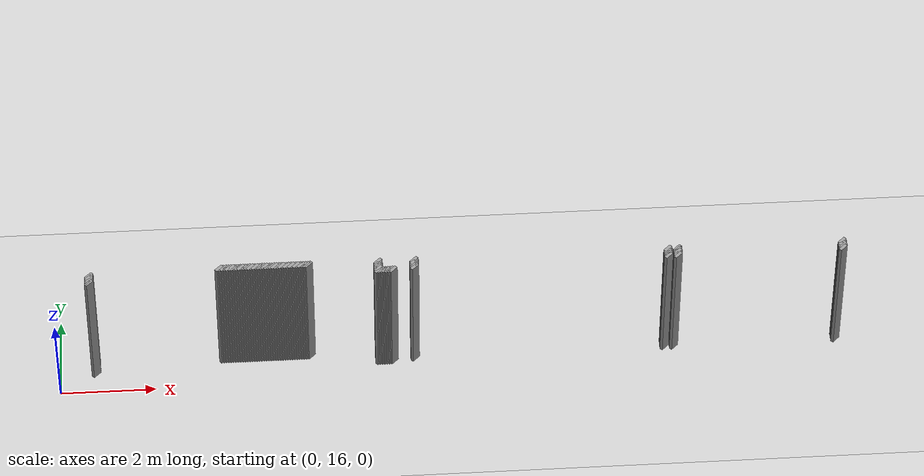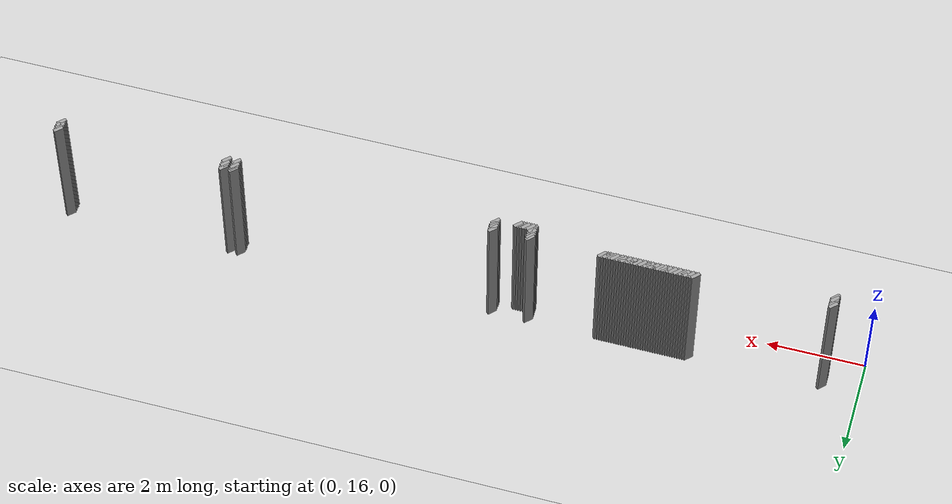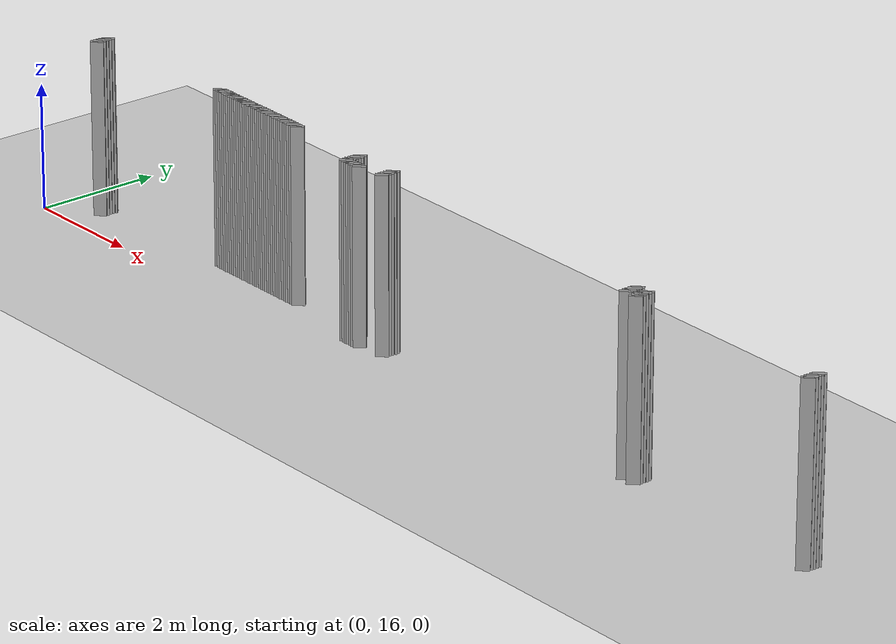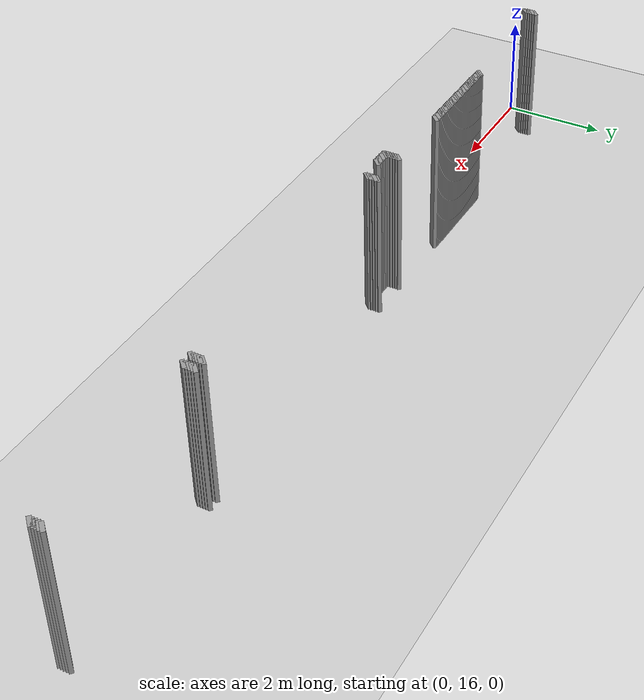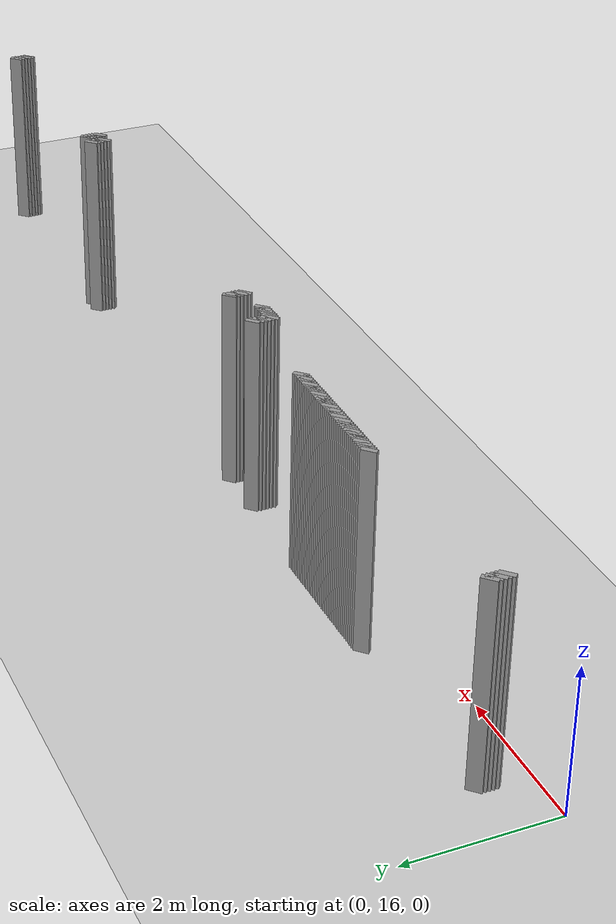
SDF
<sdf version="1.5">
 <world name="default">
  <include><uri>model://ground_plane</uri></include>
  <include><uri>model://sun</uri></include>
  <model name="grey_wall_447">
   <static>1</static>
   <link name="link">
    <pose>3.45 16.75  1.4 0 0 -0.7853981633974216</pose>
    <collision name="collision">
     <geometry><box><size>0.07071067811865261 .2  2.8</size></box></geometry>
    </collision>
    <visual name="visual">
     <cast_shadows>0</cast_shadows>
     <geometry><box><size>0.07071067811865261 .2  2.8</size></box></geometry>
     <material>
      <script>
       <uri>model://grey_wall/materials/scripts</uri>
       <uri>model://grey_wall/materials/textures</uri>
       <name>vrc/grey_wall</name>
      </script>
     </material>
    </visual>
   </link>
  </model>
  <model name="grey_wall_448">
   <static>1</static>
   <link name="link">
    <pose>3.5 16.75  1.4 0 0 -0.7853981633974216</pose>
    <collision name="collision">
     <geometry><box><size>0.07071067811865261 .2  2.8</size></box></geometry>
    </collision>
    <visual name="visual">
     <cast_shadows>0</cast_shadows>
     <geometry><box><size>0.07071067811865261 .2  2.8</size></box></geometry>
     <material>
      <script>
       <uri>model://grey_wall/materials/scripts</uri>
       <uri>model://grey_wall/materials/textures</uri>
       <name>vrc/grey_wall</name>
      </script>
     </material>
    </visual>
   </link>
  </model>
  <model name="grey_wall_449">
   <static>1</static>
   <link name="link">
    <pose>3.5500000000000003 16.75  1.4 0 0 -0.7853981633974216</pose>
    <collision name="collision">
     <geometry><box><size>0.07071067811865261 .2  2.8</size></box></geometry>
    </collision>
    <visual name="visual">
     <cast_shadows>0</cast_shadows>
     <geometry><box><size>0.07071067811865261 .2  2.8</size></box></geometry>
     <material>
      <script>
       <uri>model://grey_wall/materials/scripts</uri>
       <uri>model://grey_wall/materials/textures</uri>
       <name>vrc/grey_wall</name>
      </script>
     </material>
    </visual>
   </link>
  </model>
  <model name="grey_wall_450">
   <static>1</static>
   <link name="link">
    <pose>3.6 16.75  1.4 0 0 -0.7853981633974216</pose>
    <collision name="collision">
     <geometry><box><size>0.07071067811865261 .2  2.8</size></box></geometry>
    </collision>
    <visual name="visual">
     <cast_shadows>0</cast_shadows>
     <geometry><box><size>0.07071067811865261 .2  2.8</size></box></geometry>
     <material>
      <script>
       <uri>model://grey_wall/materials/scripts</uri>
       <uri>model://grey_wall/materials/textures</uri>
       <name>vrc/grey_wall</name>
      </script>
     </material>
    </visual>
   </link>
  </model>
  <model name="grey_wall_451">
   <static>1</static>
   <link name="link">
    <pose>3.6500000000000004 16.75  1.4 0 0 -0.7853981633974216</pose>
    <collision name="collision">
     <geometry><box><size>0.07071067811865261 .2  2.8</size></box></geometry>
    </collision>
    <visual name="visual">
     <cast_shadows>0</cast_shadows>
     <geometry><box><size>0.07071067811865261 .2  2.8</size></box></geometry>
     <material>
      <script>
       <uri>model://grey_wall/materials/scripts</uri>
       <uri>model://grey_wall/materials/textures</uri>
       <name>vrc/grey_wall</name>
      </script>
     </material>
    </visual>
   </link>
  </model>
  <model name="grey_wall_452">
   <static>1</static>
   <link name="link">
    <pose>3.7 16.75  1.4 0 0 -0.7853981633974216</pose>
    <collision name="collision">
     <geometry><box><size>0.07071067811865261 .2  2.8</size></box></geometry>
    </collision>
    <visual name="visual">
     <cast_shadows>0</cast_shadows>
     <geometry><box><size>0.07071067811865261 .2  2.8</size></box></geometry>
     <material>
      <script>
       <uri>model://grey_wall/materials/scripts</uri>
       <uri>model://grey_wall/materials/textures</uri>
       <name>vrc/grey_wall</name>
      </script>
     </material>
    </visual>
   </link>
  </model>
  <model name="grey_wall_453">
   <static>1</static>
   <link name="link">
    <pose>3.75 16.75  1.4 0 0 -0.7853981633974216</pose>
    <collision name="collision">
     <geometry><box><size>0.07071067811865261 .2  2.8</size></box></geometry>
    </collision>
    <visual name="visual">
     <cast_shadows>0</cast_shadows>
     <geometry><box><size>0.07071067811865261 .2  2.8</size></box></geometry>
     <material>
      <script>
       <uri>model://grey_wall/materials/scripts</uri>
       <uri>model://grey_wall/materials/textures</uri>
       <name>vrc/grey_wall</name>
      </script>
     </material>
    </visual>
   </link>
  </model>
  <model name="grey_wall_454">
   <static>1</static>
   <link name="link">
    <pose>3.8000000000000003 16.75  1.4 0 0 -0.7853981633974216</pose>
    <collision name="collision">
     <geometry><box><size>0.07071067811865261 .2  2.8</size></box></geometry>
    </collision>
    <visual name="visual">
     <cast_shadows>0</cast_shadows>
     <geometry><box><size>0.07071067811865261 .2  2.8</size></box></geometry>
     <material>
      <script>
       <uri>model://grey_wall/materials/scripts</uri>
       <uri>model://grey_wall/materials/textures</uri>
       <name>vrc/grey_wall</name>
      </script>
     </material>
    </visual>
   </link>
  </model>
  <model name="grey_wall_455">
   <static>1</static>
   <link name="link">
    <pose>3.85 16.75  1.4 0 0 -0.7853981633974216</pose>
    <collision name="collision">
     <geometry><box><size>0.07071067811865261 .2  2.8</size></box></geometry>
    </collision>
    <visual name="visual">
     <cast_shadows>0</cast_shadows>
     <geometry><box><size>0.07071067811865261 .2  2.8</size></box></geometry>
     <material>
      <script>
       <uri>model://grey_wall/materials/scripts</uri>
       <uri>model://grey_wall/materials/textures</uri>
       <name>vrc/grey_wall</name>
      </script>
     </material>
    </visual>
   </link>
  </model>
  <model name="grey_wall_456">
   <static>1</static>
   <link name="link">
    <pose>3.9000000000000004 16.75  1.4 0 0 -0.7853981633974216</pose>
    <collision name="collision">
     <geometry><box><size>0.07071067811865261 .2  2.8</size></box></geometry>
    </collision>
    <visual name="visual">
     <cast_shadows>0</cast_shadows>
     <geometry><box><size>0.07071067811865261 .2  2.8</size></box></geometry>
     <material>
      <script>
       <uri>model://grey_wall/materials/scripts</uri>
       <uri>model://grey_wall/materials/textures</uri>
       <name>vrc/grey_wall</name>
      </script>
     </material>
    </visual>
   </link>
  </model>
  <model name="grey_wall_457">
   <static>1</static>
   <link name="link">
    <pose>3.95 16.75  1.4 0 0 -0.7853981633974216</pose>
    <collision name="collision">
     <geometry><box><size>0.07071067811865261 .2  2.8</size></box></geometry>
    </collision>
    <visual name="visual">
     <cast_shadows>0</cast_shadows>
     <geometry><box><size>0.07071067811865261 .2  2.8</size></box></geometry>
     <material>
      <script>
       <uri>model://grey_wall/materials/scripts</uri>
       <uri>model://grey_wall/materials/textures</uri>
       <name>vrc/grey_wall</name>
      </script>
     </material>
    </visual>
   </link>
  </model>
  <model name="grey_wall_458">
   <static>1</static>
   <link name="link">
    <pose>4.0 16.75  1.4 0 0 -0.7853981633974172</pose>
    <collision name="collision">
     <geometry><box><size>0.07071067811865293 .2  2.8</size></box></geometry>
    </collision>
    <visual name="visual">
     <cast_shadows>0</cast_shadows>
     <geometry><box><size>0.07071067811865293 .2  2.8</size></box></geometry>
     <material>
      <script>
       <uri>model://grey_wall/materials/scripts</uri>
       <uri>model://grey_wall/materials/textures</uri>
       <name>vrc/grey_wall</name>
      </script>
     </material>
    </visual>
   </link>
  </model>
  <model name="grey_wall_459">
   <static>1</static>
   <link name="link">
    <pose>4.05 16.75  1.4 0 0 -0.7853981633974128</pose>
    <collision name="collision">
     <geometry><box><size>0.07071067811865325 .2  2.8</size></box></geometry>
    </collision>
    <visual name="visual">
     <cast_shadows>0</cast_shadows>
     <geometry><box><size>0.07071067811865325 .2  2.8</size></box></geometry>
     <material>
      <script>
       <uri>model://grey_wall/materials/scripts</uri>
       <uri>model://grey_wall/materials/textures</uri>
       <name>vrc/grey_wall</name>
      </script>
     </material>
    </visual>
   </link>
  </model>
  <model name="grey_wall_460">
   <static>1</static>
   <link name="link">
    <pose>4.1000000000000005 16.75  1.4 0 0 -0.7853981633974128</pose>
    <collision name="collision">
     <geometry><box><size>0.07071067811865325 .2  2.8</size></box></geometry>
    </collision>
    <visual name="visual">
     <cast_shadows>0</cast_shadows>
     <geometry><box><size>0.07071067811865325 .2  2.8</size></box></geometry>
     <material>
      <script>
       <uri>model://grey_wall/materials/scripts</uri>
       <uri>model://grey_wall/materials/textures</uri>
       <name>vrc/grey_wall</name>
      </script>
     </material>
    </visual>
   </link>
  </model>
  <model name="grey_wall_461">
   <static>1</static>
   <link name="link">
    <pose>4.15 16.75  1.4 0 0 -0.7853981633974128</pose>
    <collision name="collision">
     <geometry><box><size>0.07071067811865325 .2  2.8</size></box></geometry>
    </collision>
    <visual name="visual">
     <cast_shadows>0</cast_shadows>
     <geometry><box><size>0.07071067811865325 .2  2.8</size></box></geometry>
     <material>
      <script>
       <uri>model://grey_wall/materials/scripts</uri>
       <uri>model://grey_wall/materials/textures</uri>
       <name>vrc/grey_wall</name>
      </script>
     </material>
    </visual>
   </link>
  </model>
  <model name="grey_wall_462">
   <static>1</static>
   <link name="link">
    <pose>4.2 16.75  1.4 0 0 -0.7853981633974128</pose>
    <collision name="collision">
     <geometry><box><size>0.07071067811865325 .2  2.8</size></box></geometry>
    </collision>
    <visual name="visual">
     <cast_shadows>0</cast_shadows>
     <geometry><box><size>0.07071067811865325 .2  2.8</size></box></geometry>
     <material>
      <script>
       <uri>model://grey_wall/materials/scripts</uri>
       <uri>model://grey_wall/materials/textures</uri>
       <name>vrc/grey_wall</name>
      </script>
     </material>
    </visual>
   </link>
  </model>
  <model name="grey_wall_463">
   <static>1</static>
   <link name="link">
    <pose>4.25 16.75  1.4 0 0 -0.7853981633974128</pose>
    <collision name="collision">
     <geometry><box><size>0.07071067811865325 .2  2.8</size></box></geometry>
    </collision>
    <visual name="visual">
     <cast_shadows>0</cast_shadows>
     <geometry><box><size>0.07071067811865325 .2  2.8</size></box></geometry>
     <material>
      <script>
       <uri>model://grey_wall/materials/scripts</uri>
       <uri>model://grey_wall/materials/textures</uri>
       <name>vrc/grey_wall</name>
      </script>
     </material>
    </visual>
   </link>
  </model>
  <model name="grey_wall_464">
   <static>1</static>
   <link name="link">
    <pose>4.3 16.75  1.4 0 0 -0.7853981633974128</pose>
    <collision name="collision">
     <geometry><box><size>0.07071067811865325 .2  2.8</size></box></geometry>
    </collision>
    <visual name="visual">
     <cast_shadows>0</cast_shadows>
     <geometry><box><size>0.07071067811865325 .2  2.8</size></box></geometry>
     <material>
      <script>
       <uri>model://grey_wall/materials/scripts</uri>
       <uri>model://grey_wall/materials/textures</uri>
       <name>vrc/grey_wall</name>
      </script>
     </material>
    </visual>
   </link>
  </model>
  <model name="grey_wall_465">
   <static>1</static>
   <link name="link">
    <pose>4.3500000000000005 16.75  1.4 0 0 -0.7853981633974128</pose>
    <collision name="collision">
     <geometry><box><size>0.07071067811865325 .2  2.8</size></box></geometry>
    </collision>
    <visual name="visual">
     <cast_shadows>0</cast_shadows>
     <geometry><box><size>0.07071067811865325 .2  2.8</size></box></geometry>
     <material>
      <script>
       <uri>model://grey_wall/materials/scripts</uri>
       <uri>model://grey_wall/materials/textures</uri>
       <name>vrc/grey_wall</name>
      </script>
     </material>
    </visual>
   </link>
  </model>
  <model name="grey_wall_466">
   <static>1</static>
   <link name="link">
    <pose>4.4 16.75  1.4 0 0 -0.7853981633974128</pose>
    <collision name="collision">
     <geometry><box><size>0.07071067811865325 .2  2.8</size></box></geometry>
    </collision>
    <visual name="visual">
     <cast_shadows>0</cast_shadows>
     <geometry><box><size>0.07071067811865325 .2  2.8</size></box></geometry>
     <material>
      <script>
       <uri>model://grey_wall/materials/scripts</uri>
       <uri>model://grey_wall/materials/textures</uri>
       <name>vrc/grey_wall</name>
      </script>
     </material>
    </visual>
   </link>
  </model>
  <model name="grey_wall_467">
   <static>1</static>
   <link name="link">
    <pose>4.45 16.75  1.4 0 0 -0.7853981633974128</pose>
    <collision name="collision">
     <geometry><box><size>0.07071067811865325 .2  2.8</size></box></geometry>
    </collision>
    <visual name="visual">
     <cast_shadows>0</cast_shadows>
     <geometry><box><size>0.07071067811865325 .2  2.8</size></box></geometry>
     <material>
      <script>
       <uri>model://grey_wall/materials/scripts</uri>
       <uri>model://grey_wall/materials/textures</uri>
       <name>vrc/grey_wall</name>
      </script>
     </material>
    </visual>
   </link>
  </model>
  <model name="grey_wall_468">
   <static>1</static>
   <link name="link">
    <pose>4.5 16.75  1.4 0 0 -0.7853981633974128</pose>
    <collision name="collision">
     <geometry><box><size>0.07071067811865325 .2  2.8</size></box></geometry>
    </collision>
    <visual name="visual">
     <cast_shadows>0</cast_shadows>
     <geometry><box><size>0.07071067811865325 .2  2.8</size></box></geometry>
     <material>
      <script>
       <uri>model://grey_wall/materials/scripts</uri>
       <uri>model://grey_wall/materials/textures</uri>
       <name>vrc/grey_wall</name>
      </script>
     </material>
    </visual>
   </link>
  </model>
  <model name="grey_wall_469">
   <static>1</static>
   <link name="link">
    <pose>4.55 16.75  1.4 0 0 -0.7853981633974128</pose>
    <collision name="collision">
     <geometry><box><size>0.07071067811865325 .2  2.8</size></box></geometry>
    </collision>
    <visual name="visual">
     <cast_shadows>0</cast_shadows>
     <geometry><box><size>0.07071067811865325 .2  2.8</size></box></geometry>
     <material>
      <script>
       <uri>model://grey_wall/materials/scripts</uri>
       <uri>model://grey_wall/materials/textures</uri>
       <name>vrc/grey_wall</name>
      </script>
     </material>
    </visual>
   </link>
  </model>
  <model name="grey_wall_470">
   <static>1</static>
   <link name="link">
    <pose>4.6000000000000005 16.75  1.4 0 0 -0.7853981633974128</pose>
    <collision name="collision">
     <geometry><box><size>0.07071067811865325 .2  2.8</size></box></geometry>
    </collision>
    <visual name="visual">
     <cast_shadows>0</cast_shadows>
     <geometry><box><size>0.07071067811865325 .2  2.8</size></box></geometry>
     <material>
      <script>
       <uri>model://grey_wall/materials/scripts</uri>
       <uri>model://grey_wall/materials/textures</uri>
       <name>vrc/grey_wall</name>
      </script>
     </material>
    </visual>
   </link>
  </model>
  <model name="grey_wall_471">
   <static>1</static>
   <link name="link">
    <pose>4.65 16.75  1.4 0 0 -0.7853981633974128</pose>
    <collision name="collision">
     <geometry><box><size>0.07071067811865325 .2  2.8</size></box></geometry>
    </collision>
    <visual name="visual">
     <cast_shadows>0</cast_shadows>
     <geometry><box><size>0.07071067811865325 .2  2.8</size></box></geometry>
     <material>
      <script>
       <uri>model://grey_wall/materials/scripts</uri>
       <uri>model://grey_wall/materials/textures</uri>
       <name>vrc/grey_wall</name>
      </script>
     </material>
    </visual>
   </link>
  </model>
  <model name="grey_wall_472">
   <static>1</static>
   <link name="link">
    <pose>4.7 16.75  1.4 0 0 -0.7853981633974128</pose>
    <collision name="collision">
     <geometry><box><size>0.07071067811865325 .2  2.8</size></box></geometry>
    </collision>
    <visual name="visual">
     <cast_shadows>0</cast_shadows>
     <geometry><box><size>0.07071067811865325 .2  2.8</size></box></geometry>
     <material>
      <script>
       <uri>model://grey_wall/materials/scripts</uri>
       <uri>model://grey_wall/materials/textures</uri>
       <name>vrc/grey_wall</name>
      </script>
     </material>
    </visual>
   </link>
  </model>
  <model name="grey_wall_473">
   <static>1</static>
   <link name="link">
    <pose>4.75 16.75  1.4 0 0 -0.7853981633974128</pose>
    <collision name="collision">
     <geometry><box><size>0.07071067811865325 .2  2.8</size></box></geometry>
    </collision>
    <visual name="visual">
     <cast_shadows>0</cast_shadows>
     <geometry><box><size>0.07071067811865325 .2  2.8</size></box></geometry>
     <material>
      <script>
       <uri>model://grey_wall/materials/scripts</uri>
       <uri>model://grey_wall/materials/textures</uri>
       <name>vrc/grey_wall</name>
      </script>
     </material>
    </visual>
   </link>
  </model>
  <model name="grey_wall_474">
   <static>1</static>
   <link name="link">
    <pose>4.800000000000001 16.75  1.4 0 0 -0.7853981633974128</pose>
    <collision name="collision">
     <geometry><box><size>0.07071067811865325 .2  2.8</size></box></geometry>
    </collision>
    <visual name="visual">
     <cast_shadows>0</cast_shadows>
     <geometry><box><size>0.07071067811865325 .2  2.8</size></box></geometry>
     <material>
      <script>
       <uri>model://grey_wall/materials/scripts</uri>
       <uri>model://grey_wall/materials/textures</uri>
       <name>vrc/grey_wall</name>
      </script>
     </material>
    </visual>
   </link>
  </model>
  <model name="grey_wall_475">
   <static>1</static>
   <link name="link">
    <pose>4.8500000000000005 16.75  1.4 0 0 -0.7853981633974128</pose>
    <collision name="collision">
     <geometry><box><size>0.07071067811865325 .2  2.8</size></box></geometry>
    </collision>
    <visual name="visual">
     <cast_shadows>0</cast_shadows>
     <geometry><box><size>0.07071067811865325 .2  2.8</size></box></geometry>
     <material>
      <script>
       <uri>model://grey_wall/materials/scripts</uri>
       <uri>model://grey_wall/materials/textures</uri>
       <name>vrc/grey_wall</name>
      </script>
     </material>
    </visual>
   </link>
  </model>
  <model name="grey_wall_476">
   <static>1</static>
   <link name="link">
    <pose>4.9 16.75  1.4 0 0 -0.7853981633974128</pose>
    <collision name="collision">
     <geometry><box><size>0.07071067811865325 .2  2.8</size></box></geometry>
    </collision>
    <visual name="visual">
     <cast_shadows>0</cast_shadows>
     <geometry><box><size>0.07071067811865325 .2  2.8</size></box></geometry>
     <material>
      <script>
       <uri>model://grey_wall/materials/scripts</uri>
       <uri>model://grey_wall/materials/textures</uri>
       <name>vrc/grey_wall</name>
      </script>
     </material>
    </visual>
   </link>
  </model>
  <model name="grey_wall_477">
   <static>1</static>
   <link name="link">
    <pose>4.95 16.75  1.4 0 0 -0.7853981633974128</pose>
    <collision name="collision">
     <geometry><box><size>0.07071067811865325 .2  2.8</size></box></geometry>
    </collision>
    <visual name="visual">
     <cast_shadows>0</cast_shadows>
     <geometry><box><size>0.07071067811865325 .2  2.8</size></box></geometry>
     <material>
      <script>
       <uri>model://grey_wall/materials/scripts</uri>
       <uri>model://grey_wall/materials/textures</uri>
       <name>vrc/grey_wall</name>
      </script>
     </material>
    </visual>
   </link>
  </model>
  <model name="grey_wall_478">
   <static>1</static>
   <link name="link">
    <pose>5.0 16.75  1.4 0 0 -0.7853981633974128</pose>
    <collision name="collision">
     <geometry><box><size>0.07071067811865325 .2  2.8</size></box></geometry>
    </collision>
    <visual name="visual">
     <cast_shadows>0</cast_shadows>
     <geometry><box><size>0.07071067811865325 .2  2.8</size></box></geometry>
     <material>
      <script>
       <uri>model://grey_wall/materials/scripts</uri>
       <uri>model://grey_wall/materials/textures</uri>
       <name>vrc/grey_wall</name>
      </script>
     </material>
    </visual>
   </link>
  </model>
  <model name="grey_wall_479">
   <static>1</static>
   <link name="link">
    <pose>5.050000000000001 16.75  1.4 0 0 -0.7853981633974128</pose>
    <collision name="collision">
     <geometry><box><size>0.07071067811865325 .2  2.8</size></box></geometry>
    </collision>
    <visual name="visual">
     <cast_shadows>0</cast_shadows>
     <geometry><box><size>0.07071067811865325 .2  2.8</size></box></geometry>
     <material>
      <script>
       <uri>model://grey_wall/materials/scripts</uri>
       <uri>model://grey_wall/materials/textures</uri>
       <name>vrc/grey_wall</name>
      </script>
     </material>
    </visual>
   </link>
  </model>
  <model name="grey_wall_480">
   <static>1</static>
   <link name="link">
    <pose>5.1000000000000005 16.75  1.4 0 0 -0.7853981633974128</pose>
    <collision name="collision">
     <geometry><box><size>0.07071067811865325 .2  2.8</size></box></geometry>
    </collision>
    <visual name="visual">
     <cast_shadows>0</cast_shadows>
     <geometry><box><size>0.07071067811865325 .2  2.8</size></box></geometry>
     <material>
      <script>
       <uri>model://grey_wall/materials/scripts</uri>
       <uri>model://grey_wall/materials/textures</uri>
       <name>vrc/grey_wall</name>
      </script>
     </material>
    </visual>
   </link>
  </model>
  <model name="grey_wall_481">
   <static>1</static>
   <link name="link">
    <pose>5.15 16.75  1.4 0 0 -0.7853981633974128</pose>
    <collision name="collision">
     <geometry><box><size>0.07071067811865325 .2  2.8</size></box></geometry>
    </collision>
    <visual name="visual">
     <cast_shadows>0</cast_shadows>
     <geometry><box><size>0.07071067811865325 .2  2.8</size></box></geometry>
     <material>
      <script>
       <uri>model://grey_wall/materials/scripts</uri>
       <uri>model://grey_wall/materials/textures</uri>
       <name>vrc/grey_wall</name>
      </script>
     </material>
    </visual>
   </link>
  </model>
  <model name="grey_wall_482">
   <static>1</static>
   <link name="link">
    <pose>5.2 16.75  1.4 0 0 -0.7853981633974128</pose>
    <collision name="collision">
     <geometry><box><size>0.07071067811865325 .2  2.8</size></box></geometry>
    </collision>
    <visual name="visual">
     <cast_shadows>0</cast_shadows>
     <geometry><box><size>0.07071067811865325 .2  2.8</size></box></geometry>
     <material>
      <script>
       <uri>model://grey_wall/materials/scripts</uri>
       <uri>model://grey_wall/materials/textures</uri>
       <name>vrc/grey_wall</name>
      </script>
     </material>
    </visual>
   </link>
  </model>
  <model name="grey_wall_483">
   <static>1</static>
   <link name="link">
    <pose>5.25 16.75  1.4 0 0 -0.7853981633974128</pose>
    <collision name="collision">
     <geometry><box><size>0.07071067811865325 .2  2.8</size></box></geometry>
    </collision>
    <visual name="visual">
     <cast_shadows>0</cast_shadows>
     <geometry><box><size>0.07071067811865325 .2  2.8</size></box></geometry>
     <material>
      <script>
       <uri>model://grey_wall/materials/scripts</uri>
       <uri>model://grey_wall/materials/textures</uri>
       <name>vrc/grey_wall</name>
      </script>
     </material>
    </visual>
   </link>
  </model>
  <model name="grey_wall_484">
   <static>1</static>
   <link name="link">
    <pose>5.300000000000001 16.75  1.4 0 0 -0.7853981633974128</pose>
    <collision name="collision">
     <geometry><box><size>0.07071067811865325 .2  2.8</size></box></geometry>
    </collision>
    <visual name="visual">
     <cast_shadows>0</cast_shadows>
     <geometry><box><size>0.07071067811865325 .2  2.8</size></box></geometry>
     <material>
      <script>
       <uri>model://grey_wall/materials/scripts</uri>
       <uri>model://grey_wall/materials/textures</uri>
       <name>vrc/grey_wall</name>
      </script>
     </material>
    </visual>
   </link>
  </model>
  <model name="grey_wall_485">
   <static>1</static>
   <link name="link">
    <pose>6.75 16.75  1.4 0 0 -0.7853981633974128</pose>
    <collision name="collision">
     <geometry><box><size>0.07071067811865325 .2  2.8</size></box></geometry>
    </collision>
    <visual name="visual">
     <cast_shadows>0</cast_shadows>
     <geometry><box><size>0.07071067811865325 .2  2.8</size></box></geometry>
     <material>
      <script>
       <uri>model://grey_wall/materials/scripts</uri>
       <uri>model://grey_wall/materials/textures</uri>
       <name>vrc/grey_wall</name>
      </script>
     </material>
    </visual>
   </link>
  </model>
  <model name="grey_wall_486">
   <static>1</static>
   <link name="link">
    <pose>7.5 16.75  1.4 0 0 -0.7853981633974128</pose>
    <collision name="collision">
     <geometry><box><size>0.07071067811865325 .2  2.8</size></box></geometry>
    </collision>
    <visual name="visual">
     <cast_shadows>0</cast_shadows>
     <geometry><box><size>0.07071067811865325 .2  2.8</size></box></geometry>
     <material>
      <script>
       <uri>model://grey_wall/materials/scripts</uri>
       <uri>model://grey_wall/materials/textures</uri>
       <name>vrc/grey_wall</name>
      </script>
     </material>
    </visual>
   </link>
  </model>
  <model name="grey_wall_487">
   <static>1</static>
   <link name="link">
    <pose>12.8 16.75  1.4 0 0 -0.7853981633974128</pose>
    <collision name="collision">
     <geometry><box><size>0.07071067811865325 .2  2.8</size></box></geometry>
    </collision>
    <visual name="visual">
     <cast_shadows>0</cast_shadows>
     <geometry><box><size>0.07071067811865325 .2  2.8</size></box></geometry>
     <material>
      <script>
       <uri>model://grey_wall/materials/scripts</uri>
       <uri>model://grey_wall/materials/textures</uri>
       <name>vrc/grey_wall</name>
      </script>
     </material>
    </visual>
   </link>
  </model>
  <model name="grey_wall_488">
   <static>1</static>
   <link name="link">
    <pose>13.0 16.75  1.4 0 0 -0.7853981633974128</pose>
    <collision name="collision">
     <geometry><box><size>0.07071067811865325 .2  2.8</size></box></geometry>
    </collision>
    <visual name="visual">
     <cast_shadows>0</cast_shadows>
     <geometry><box><size>0.07071067811865325 .2  2.8</size></box></geometry>
     <material>
      <script>
       <uri>model://grey_wall/materials/scripts</uri>
       <uri>model://grey_wall/materials/textures</uri>
       <name>vrc/grey_wall</name>
      </script>
     </material>
    </visual>
   </link>
  </model>
  <model name="grey_wall_489">
   <static>1</static>
   <link name="link">
    <pose>16.45 16.75  1.4 0 0 -0.7853981633974483</pose>
    <collision name="collision">
     <geometry><box><size>0.07071067811865074 .2  2.8</size></box></geometry>
    </collision>
    <visual name="visual">
     <cast_shadows>0</cast_shadows>
     <geometry><box><size>0.07071067811865074 .2  2.8</size></box></geometry>
     <material>
      <script>
       <uri>model://grey_wall/materials/scripts</uri>
       <uri>model://grey_wall/materials/textures</uri>
       <name>vrc/grey_wall</name>
      </script>
     </material>
    </visual>
   </link>
  </model>
  <model name="grey_wall_490">
   <static>1</static>
   <link name="link">
    <pose>0.75 16.7  1.4 0 0 -0.7853981633974194</pose>
    <collision name="collision">
     <geometry><box><size>0.07071067811865277 .2  2.8</size></box></geometry>
    </collision>
    <visual name="visual">
     <cast_shadows>0</cast_shadows>
     <geometry><box><size>0.07071067811865277 .2  2.8</size></box></geometry>
     <material>
      <script>
       <uri>model://grey_wall/materials/scripts</uri>
       <uri>model://grey_wall/materials/textures</uri>
       <name>vrc/grey_wall</name>
      </script>
     </material>
    </visual>
   </link>
  </model>
  <model name="grey_wall_491">
   <static>1</static>
   <link name="link">
    <pose>6.75 16.7  1.4 0 0 -0.7853981633974128</pose>
    <collision name="collision">
     <geometry><box><size>0.07071067811865325 .2  2.8</size></box></geometry>
    </collision>
    <visual name="visual">
     <cast_shadows>0</cast_shadows>
     <geometry><box><size>0.07071067811865325 .2  2.8</size></box></geometry>
     <material>
      <script>
       <uri>model://grey_wall/materials/scripts</uri>
       <uri>model://grey_wall/materials/textures</uri>
       <name>vrc/grey_wall</name>
      </script>
     </material>
    </visual>
   </link>
  </model>
  <model name="grey_wall_492">
   <static>1</static>
   <link name="link">
    <pose>7.5 16.7  1.4 0 0 -0.7853981633974128</pose>
    <collision name="collision">
     <geometry><box><size>0.07071067811865325 .2  2.8</size></box></geometry>
    </collision>
    <visual name="visual">
     <cast_shadows>0</cast_shadows>
     <geometry><box><size>0.07071067811865325 .2  2.8</size></box></geometry>
     <material>
      <script>
       <uri>model://grey_wall/materials/scripts</uri>
       <uri>model://grey_wall/materials/textures</uri>
       <name>vrc/grey_wall</name>
      </script>
     </material>
    </visual>
   </link>
  </model>
  <model name="grey_wall_493">
   <static>1</static>
   <link name="link">
    <pose>12.8 16.7  1.4 0 0 -0.7853981633974128</pose>
    <collision name="collision">
     <geometry><box><size>0.07071067811865325 .2  2.8</size></box></geometry>
    </collision>
    <visual name="visual">
     <cast_shadows>0</cast_shadows>
     <geometry><box><size>0.07071067811865325 .2  2.8</size></box></geometry>
     <material>
      <script>
       <uri>model://grey_wall/materials/scripts</uri>
       <uri>model://grey_wall/materials/textures</uri>
       <name>vrc/grey_wall</name>
      </script>
     </material>
    </visual>
   </link>
  </model>
  <model name="grey_wall_494">
   <static>1</static>
   <link name="link">
    <pose>13.0 16.7  1.4 0 0 -0.7853981633974128</pose>
    <collision name="collision">
     <geometry><box><size>0.07071067811865325 .2  2.8</size></box></geometry>
    </collision>
    <visual name="visual">
     <cast_shadows>0</cast_shadows>
     <geometry><box><size>0.07071067811865325 .2  2.8</size></box></geometry>
     <material>
      <script>
       <uri>model://grey_wall/materials/scripts</uri>
       <uri>model://grey_wall/materials/textures</uri>
       <name>vrc/grey_wall</name>
      </script>
     </material>
    </visual>
   </link>
  </model>
  <model name="grey_wall_495">
   <static>1</static>
   <link name="link">
    <pose>16.45 16.7  1.4 0 0 -0.7853981633974483</pose>
    <collision name="collision">
     <geometry><box><size>0.07071067811865074 .2  2.8</size></box></geometry>
    </collision>
    <visual name="visual">
     <cast_shadows>0</cast_shadows>
     <geometry><box><size>0.07071067811865074 .2  2.8</size></box></geometry>
     <material>
      <script>
       <uri>model://grey_wall/materials/scripts</uri>
       <uri>model://grey_wall/materials/textures</uri>
       <name>vrc/grey_wall</name>
      </script>
     </material>
    </visual>
   </link>
  </model>
  <model name="grey_wall_496">
   <static>1</static>
   <link name="link">
    <pose>0.75 16.650000000000002  1.4 0 0 -0.7853981633974194</pose>
    <collision name="collision">
     <geometry><box><size>0.07071067811865277 .2  2.8</size></box></geometry>
    </collision>
    <visual name="visual">
     <cast_shadows>0</cast_shadows>
     <geometry><box><size>0.07071067811865277 .2  2.8</size></box></geometry>
     <material>
      <script>
       <uri>model://grey_wall/materials/scripts</uri>
       <uri>model://grey_wall/materials/textures</uri>
       <name>vrc/grey_wall</name>
      </script>
     </material>
    </visual>
   </link>
  </model>
  <model name="grey_wall_497">
   <static>1</static>
   <link name="link">
    <pose>6.75 16.650000000000002  1.4 0 0 -0.7853981633974128</pose>
    <collision name="collision">
     <geometry><box><size>0.07071067811865325 .2  2.8</size></box></geometry>
    </collision>
    <visual name="visual">
     <cast_shadows>0</cast_shadows>
     <geometry><box><size>0.07071067811865325 .2  2.8</size></box></geometry>
     <material>
      <script>
       <uri>model://grey_wall/materials/scripts</uri>
       <uri>model://grey_wall/materials/textures</uri>
       <name>vrc/grey_wall</name>
      </script>
     </material>
    </visual>
   </link>
  </model>
  <model name="grey_wall_498">
   <static>1</static>
   <link name="link">
    <pose>7.5 16.650000000000002  1.4 0 0 -0.7853981633974128</pose>
    <collision name="collision">
     <geometry><box><size>0.07071067811865325 .2  2.8</size></box></geometry>
    </collision>
    <visual name="visual">
     <cast_shadows>0</cast_shadows>
     <geometry><box><size>0.07071067811865325 .2  2.8</size></box></geometry>
     <material>
      <script>
       <uri>model://grey_wall/materials/scripts</uri>
       <uri>model://grey_wall/materials/textures</uri>
       <name>vrc/grey_wall</name>
      </script>
     </material>
    </visual>
   </link>
  </model>
  <model name="grey_wall_499">
   <static>1</static>
   <link name="link">
    <pose>12.8 16.650000000000002  1.4 0 0 -0.7853981633974128</pose>
    <collision name="collision">
     <geometry><box><size>0.07071067811865325 .2  2.8</size></box></geometry>
    </collision>
    <visual name="visual">
     <cast_shadows>0</cast_shadows>
     <geometry><box><size>0.07071067811865325 .2  2.8</size></box></geometry>
     <material>
      <script>
       <uri>model://grey_wall/materials/scripts</uri>
       <uri>model://grey_wall/materials/textures</uri>
       <name>vrc/grey_wall</name>
      </script>
     </material>
    </visual>
   </link>
  </model>
  <model name="grey_wall_500">
   <static>1</static>
   <link name="link">
    <pose>13.0 16.650000000000002  1.4 0 0 -0.7853981633974128</pose>
    <collision name="collision">
     <geometry><box><size>0.07071067811865325 .2  2.8</size></box></geometry>
    </collision>
    <visual name="visual">
     <cast_shadows>0</cast_shadows>
     <geometry><box><size>0.07071067811865325 .2  2.8</size></box></geometry>
     <material>
      <script>
       <uri>model://grey_wall/materials/scripts</uri>
       <uri>model://grey_wall/materials/textures</uri>
       <name>vrc/grey_wall</name>
      </script>
     </material>
    </visual>
   </link>
  </model>
  <model name="grey_wall_501">
   <static>1</static>
   <link name="link">
    <pose>16.45 16.650000000000002  1.4 0 0 -0.7853981633974483</pose>
    <collision name="collision">
     <geometry><box><size>0.07071067811865074 .2  2.8</size></box></geometry>
    </collision>
    <visual name="visual">
     <cast_shadows>0</cast_shadows>
     <geometry><box><size>0.07071067811865074 .2  2.8</size></box></geometry>
     <material>
      <script>
       <uri>model://grey_wall/materials/scripts</uri>
       <uri>model://grey_wall/materials/textures</uri>
       <name>vrc/grey_wall</name>
      </script>
     </material>
    </visual>
   </link>
  </model>
  <model name="grey_wall_502">
   <static>1</static>
   <link name="link">
    <pose>0.75 16.6  1.4 0 0 -0.7853981633974194</pose>
    <collision name="collision">
     <geometry><box><size>0.07071067811865277 .2  2.8</size></box></geometry>
    </collision>
    <visual name="visual">
     <cast_shadows>0</cast_shadows>
     <geometry><box><size>0.07071067811865277 .2  2.8</size></box></geometry>
     <material>
      <script>
       <uri>model://grey_wall/materials/scripts</uri>
       <uri>model://grey_wall/materials/textures</uri>
       <name>vrc/grey_wall</name>
      </script>
     </material>
    </visual>
   </link>
  </model>
  <model name="grey_wall_503">
   <static>1</static>
   <link name="link">
    <pose>6.75 16.6  1.4 0 0 -0.7853981633974128</pose>
    <collision name="collision">
     <geometry><box><size>0.07071067811865325 .2  2.8</size></box></geometry>
    </collision>
    <visual name="visual">
     <cast_shadows>0</cast_shadows>
     <geometry><box><size>0.07071067811865325 .2  2.8</size></box></geometry>
     <material>
      <script>
       <uri>model://grey_wall/materials/scripts</uri>
       <uri>model://grey_wall/materials/textures</uri>
       <name>vrc/grey_wall</name>
      </script>
     </material>
    </visual>
   </link>
  </model>
  <model name="grey_wall_504">
   <static>1</static>
   <link name="link">
    <pose>7.5 16.6  1.4 0 0 -0.7853981633974128</pose>
    <collision name="collision">
     <geometry><box><size>0.07071067811865325 .2  2.8</size></box></geometry>
    </collision>
    <visual name="visual">
     <cast_shadows>0</cast_shadows>
     <geometry><box><size>0.07071067811865325 .2  2.8</size></box></geometry>
     <material>
      <script>
       <uri>model://grey_wall/materials/scripts</uri>
       <uri>model://grey_wall/materials/textures</uri>
       <name>vrc/grey_wall</name>
      </script>
     </material>
    </visual>
   </link>
  </model>
  <model name="grey_wall_505">
   <static>1</static>
   <link name="link">
    <pose>12.8 16.6  1.4 0 0 -0.7853981633974128</pose>
    <collision name="collision">
     <geometry><box><size>0.07071067811865325 .2  2.8</size></box></geometry>
    </collision>
    <visual name="visual">
     <cast_shadows>0</cast_shadows>
     <geometry><box><size>0.07071067811865325 .2  2.8</size></box></geometry>
     <material>
      <script>
       <uri>model://grey_wall/materials/scripts</uri>
       <uri>model://grey_wall/materials/textures</uri>
       <name>vrc/grey_wall</name>
      </script>
     </material>
    </visual>
   </link>
  </model>
  <model name="grey_wall_506">
   <static>1</static>
   <link name="link">
    <pose>13.0 16.6  1.4 0 0 -0.7853981633974128</pose>
    <collision name="collision">
     <geometry><box><size>0.07071067811865325 .2  2.8</size></box></geometry>
    </collision>
    <visual name="visual">
     <cast_shadows>0</cast_shadows>
     <geometry><box><size>0.07071067811865325 .2  2.8</size></box></geometry>
     <material>
      <script>
       <uri>model://grey_wall/materials/scripts</uri>
       <uri>model://grey_wall/materials/textures</uri>
       <name>vrc/grey_wall</name>
      </script>
     </material>
    </visual>
   </link>
  </model>
  <model name="grey_wall_507">
   <static>1</static>
   <link name="link">
    <pose>16.45 16.6  1.4 0 0 -0.7853981633974483</pose>
    <collision name="collision">
     <geometry><box><size>0.07071067811865074 .2  2.8</size></box></geometry>
    </collision>
    <visual name="visual">
     <cast_shadows>0</cast_shadows>
     <geometry><box><size>0.07071067811865074 .2  2.8</size></box></geometry>
     <material>
      <script>
       <uri>model://grey_wall/materials/scripts</uri>
       <uri>model://grey_wall/materials/textures</uri>
       <name>vrc/grey_wall</name>
      </script>
     </material>
    </visual>
   </link>
  </model>
  <model name="grey_wall_508">
   <static>1</static>
   <link name="link">
    <pose>0.75 16.55  1.4 0 0 -0.7853981633974194</pose>
    <collision name="collision">
     <geometry><box><size>0.07071067811865277 .2  2.8</size></box></geometry>
    </collision>
    <visual name="visual">
     <cast_shadows>0</cast_shadows>
     <geometry><box><size>0.07071067811865277 .2  2.8</size></box></geometry>
     <material>
      <script>
       <uri>model://grey_wall/materials/scripts</uri>
       <uri>model://grey_wall/materials/textures</uri>
       <name>vrc/grey_wall</name>
      </script>
     </material>
    </visual>
   </link>
  </model>
  <model name="grey_wall_509">
   <static>1</static>
   <link name="link">
    <pose>6.75 16.55  1.4 0 0 -0.7853981633974128</pose>
    <collision name="collision">
     <geometry><box><size>0.07071067811865325 .2  2.8</size></box></geometry>
    </collision>
    <visual name="visual">
     <cast_shadows>0</cast_shadows>
     <geometry><box><size>0.07071067811865325 .2  2.8</size></box></geometry>
     <material>
      <script>
       <uri>model://grey_wall/materials/scripts</uri>
       <uri>model://grey_wall/materials/textures</uri>
       <name>vrc/grey_wall</name>
      </script>
     </material>
    </visual>
   </link>
  </model>
  <model name="grey_wall_510">
   <static>1</static>
   <link name="link">
    <pose>7.5 16.55  1.4 0 0 -0.7853981633974128</pose>
    <collision name="collision">
     <geometry><box><size>0.07071067811865325 .2  2.8</size></box></geometry>
    </collision>
    <visual name="visual">
     <cast_shadows>0</cast_shadows>
     <geometry><box><size>0.07071067811865325 .2  2.8</size></box></geometry>
     <material>
      <script>
       <uri>model://grey_wall/materials/scripts</uri>
       <uri>model://grey_wall/materials/textures</uri>
       <name>vrc/grey_wall</name>
      </script>
     </material>
    </visual>
   </link>
  </model>
  <model name="grey_wall_511">
   <static>1</static>
   <link name="link">
    <pose>12.8 16.55  1.4 0 0 -0.7853981633974128</pose>
    <collision name="collision">
     <geometry><box><size>0.07071067811865325 .2  2.8</size></box></geometry>
    </collision>
    <visual name="visual">
     <cast_shadows>0</cast_shadows>
     <geometry><box><size>0.07071067811865325 .2  2.8</size></box></geometry>
     <material>
      <script>
       <uri>model://grey_wall/materials/scripts</uri>
       <uri>model://grey_wall/materials/textures</uri>
       <name>vrc/grey_wall</name>
      </script>
     </material>
    </visual>
   </link>
  </model>
  <model name="grey_wall_512">
   <static>1</static>
   <link name="link">
    <pose>13.0 16.55  1.4 0 0 -0.7853981633974128</pose>
    <collision name="collision">
     <geometry><box><size>0.07071067811865325 .2  2.8</size></box></geometry>
    </collision>
    <visual name="visual">
     <cast_shadows>0</cast_shadows>
     <geometry><box><size>0.07071067811865325 .2  2.8</size></box></geometry>
     <material>
      <script>
       <uri>model://grey_wall/materials/scripts</uri>
       <uri>model://grey_wall/materials/textures</uri>
       <name>vrc/grey_wall</name>
      </script>
     </material>
    </visual>
   </link>
  </model>
  <model name="grey_wall_513">
   <static>1</static>
   <link name="link">
    <pose>16.45 16.55  1.4 0 0 -0.7853981633974483</pose>
    <collision name="collision">
     <geometry><box><size>0.07071067811865074 .2  2.8</size></box></geometry>
    </collision>
    <visual name="visual">
     <cast_shadows>0</cast_shadows>
     <geometry><box><size>0.07071067811865074 .2  2.8</size></box></geometry>
     <material>
      <script>
       <uri>model://grey_wall/materials/scripts</uri>
       <uri>model://grey_wall/materials/textures</uri>
       <name>vrc/grey_wall</name>
      </script>
     </material>
    </visual>
   </link>
  </model>
  <model name="grey_wall_514">
   <static>1</static>
   <link name="link">
    <pose>0.75 16.5  1.4 0 0 -0.7853981633974194</pose>
    <collision name="collision">
     <geometry><box><size>0.07071067811865277 .2  2.8</size></box></geometry>
    </collision>
    <visual name="visual">
     <cast_shadows>0</cast_shadows>
     <geometry><box><size>0.07071067811865277 .2  2.8</size></box></geometry>
     <material>
      <script>
       <uri>model://grey_wall/materials/scripts</uri>
       <uri>model://grey_wall/materials/textures</uri>
       <name>vrc/grey_wall</name>
      </script>
     </material>
    </visual>
   </link>
  </model>
  <model name="grey_wall_515">
   <static>1</static>
   <link name="link">
    <pose>6.75 16.5  1.4 0 0 -0.7853981633974128</pose>
    <collision name="collision">
     <geometry><box><size>0.07071067811865325 .2  2.8</size></box></geometry>
    </collision>
    <visual name="visual">
     <cast_shadows>0</cast_shadows>
     <geometry><box><size>0.07071067811865325 .2  2.8</size></box></geometry>
     <material>
      <script>
       <uri>model://grey_wall/materials/scripts</uri>
       <uri>model://grey_wall/materials/textures</uri>
       <name>vrc/grey_wall</name>
      </script>
     </material>
    </visual>
   </link>
  </model>
  <model name="grey_wall_516">
   <static>1</static>
   <link name="link">
    <pose>6.800000000000001 16.5  1.4 0 0 -0.7853981633974128</pose>
    <collision name="collision">
     <geometry><box><size>0.07071067811865325 .2  2.8</size></box></geometry>
    </collision>
    <visual name="visual">
     <cast_shadows>0</cast_shadows>
     <geometry><box><size>0.07071067811865325 .2  2.8</size></box></geometry>
     <material>
      <script>
       <uri>model://grey_wall/materials/scripts</uri>
       <uri>model://grey_wall/materials/textures</uri>
       <name>vrc/grey_wall</name>
      </script>
     </material>
    </visual>
   </link>
  </model>
  <model name="grey_wall_517">
   <static>1</static>
   <link name="link">
    <pose>6.8500000000000005 16.5  1.4 0 0 -0.7853981633974128</pose>
    <collision name="collision">
     <geometry><box><size>0.07071067811865325 .2  2.8</size></box></geometry>
    </collision>
    <visual name="visual">
     <cast_shadows>0</cast_shadows>
     <geometry><box><size>0.07071067811865325 .2  2.8</size></box></geometry>
     <material>
      <script>
       <uri>model://grey_wall/materials/scripts</uri>
       <uri>model://grey_wall/materials/textures</uri>
       <name>vrc/grey_wall</name>
      </script>
     </material>
    </visual>
   </link>
  </model>
  <model name="grey_wall_518">
   <static>1</static>
   <link name="link">
    <pose>6.9 16.5  1.4 0 0 -0.7853981633974128</pose>
    <collision name="collision">
     <geometry><box><size>0.07071067811865325 .2  2.8</size></box></geometry>
    </collision>
    <visual name="visual">
     <cast_shadows>0</cast_shadows>
     <geometry><box><size>0.07071067811865325 .2  2.8</size></box></geometry>
     <material>
      <script>
       <uri>model://grey_wall/materials/scripts</uri>
       <uri>model://grey_wall/materials/textures</uri>
       <name>vrc/grey_wall</name>
      </script>
     </material>
    </visual>
   </link>
  </model>
  <model name="grey_wall_519">
   <static>1</static>
   <link name="link">
    <pose>6.95 16.5  1.4 0 0 -0.7853981633974128</pose>
    <collision name="collision">
     <geometry><box><size>0.07071067811865325 .2  2.8</size></box></geometry>
    </collision>
    <visual name="visual">
     <cast_shadows>0</cast_shadows>
     <geometry><box><size>0.07071067811865325 .2  2.8</size></box></geometry>
     <material>
      <script>
       <uri>model://grey_wall/materials/scripts</uri>
       <uri>model://grey_wall/materials/textures</uri>
       <name>vrc/grey_wall</name>
      </script>
     </material>
    </visual>
   </link>
  </model>
  <model name="grey_wall_520">
   <static>1</static>
   <link name="link">
    <pose>7.0 16.5  1.4 0 0 -0.7853981633974128</pose>
    <collision name="collision">
     <geometry><box><size>0.07071067811865325 .2  2.8</size></box></geometry>
    </collision>
    <visual name="visual">
     <cast_shadows>0</cast_shadows>
     <geometry><box><size>0.07071067811865325 .2  2.8</size></box></geometry>
     <material>
      <script>
       <uri>model://grey_wall/materials/scripts</uri>
       <uri>model://grey_wall/materials/textures</uri>
       <name>vrc/grey_wall</name>
      </script>
     </material>
    </visual>
   </link>
  </model>
  <model name="grey_wall_521">
   <static>1</static>
   <link name="link">
    <pose>7.050000000000001 16.5  1.4 0 0 -0.7853981633974128</pose>
    <collision name="collision">
     <geometry><box><size>0.07071067811865325 .2  2.8</size></box></geometry>
    </collision>
    <visual name="visual">
     <cast_shadows>0</cast_shadows>
     <geometry><box><size>0.07071067811865325 .2  2.8</size></box></geometry>
     <material>
      <script>
       <uri>model://grey_wall/materials/scripts</uri>
       <uri>model://grey_wall/materials/textures</uri>
       <name>vrc/grey_wall</name>
      </script>
     </material>
    </visual>
   </link>
  </model>
 </world>
</sdf>
